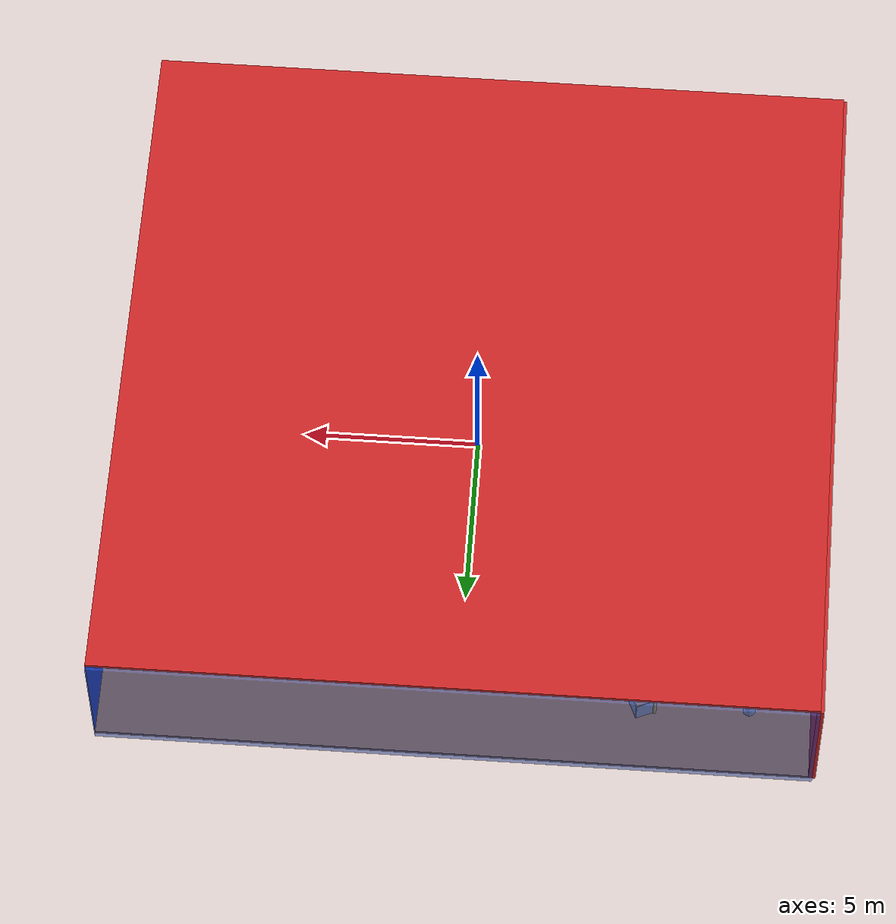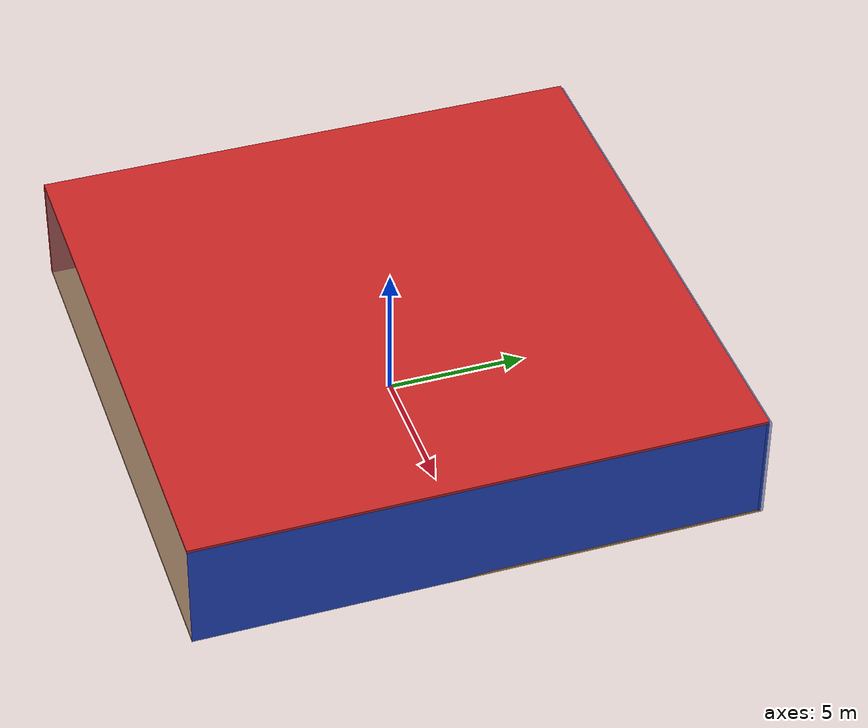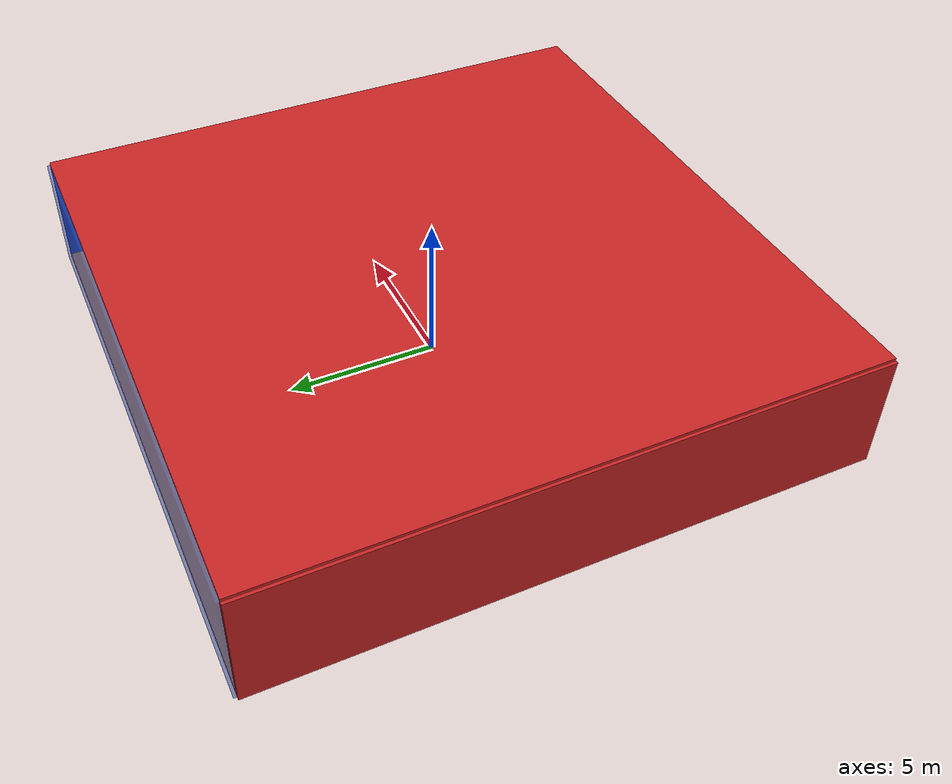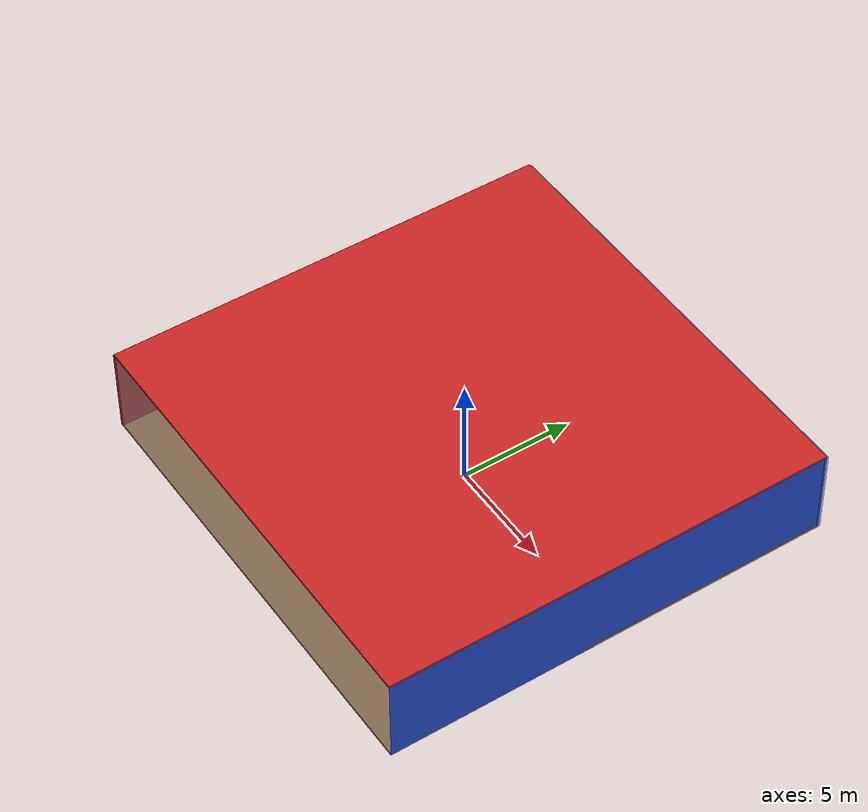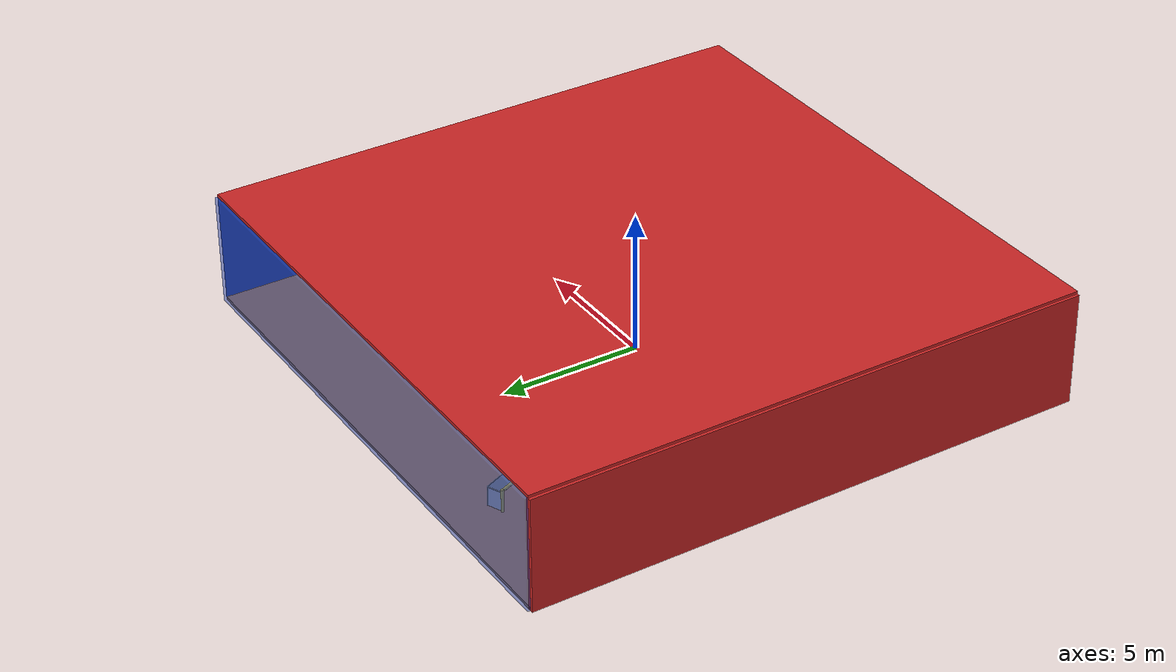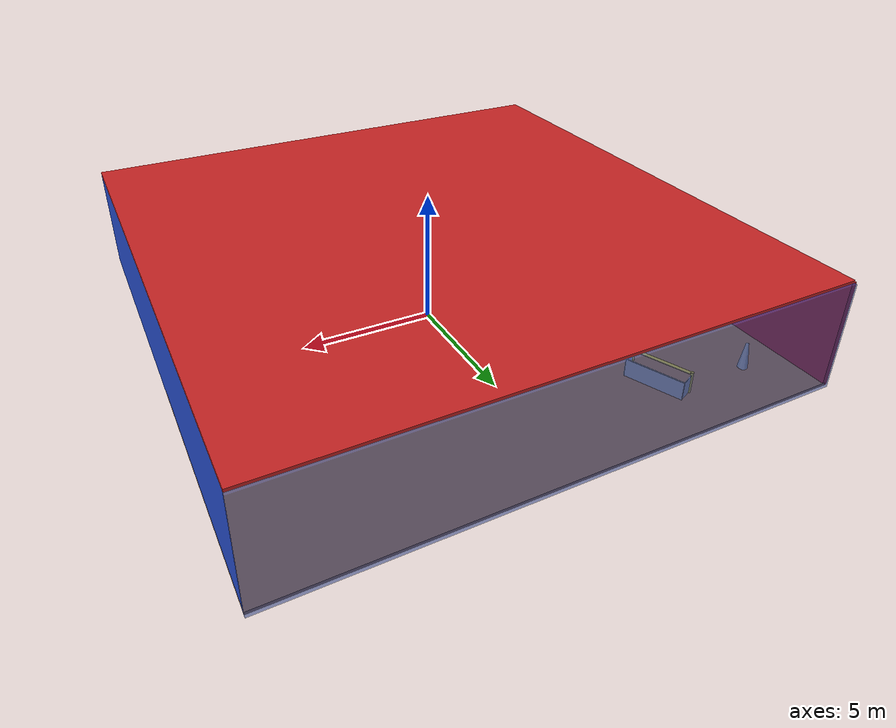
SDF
<sdf version="1.4">
 <world name="default">
  <physics type="ode">
   <max_step_size>0.001</max_step_size>
   <real_time_factor>1</real_time_factor>
   <real_time_update_rate>1000</real_time_update_rate>
   <gravity>0 0 -9.8</gravity>
  </physics>
  <scene><ambient>0.4 0.4 0.4 1</ambient><background>0.7 0.7 0.7 1</background><shadows>1</shadows></scene>
  <model name="Surrounding">
   <static>1</static>
   <link name="Ceiling">
    <collision name="Ceiling_Collision"><geometry><box><size>20 20 0.1</size></box></geometry></collision>
    <visual name="Ceiling_Visual">
     <geometry><box><size>20 20 0.1</size></box></geometry>
     <material>
      <script><uri>file://media/materials/scripts/gazebo.material</uri><name>Gazebo/Red</name></script>
     </material>
    </visual>
    <pose>0 0 4.05 0 0 0</pose>
   </link>
   <link name="Wall_South">
    <collision name="Wall_South_Collision">
     <geometry><box><size>20 0 4</size></box></geometry>
     <pose>0 0 2 0 -0 0</pose>
    </collision>
    <visual name="Wall_South_Visual">
     <pose>0 0 2 0 -0 0</pose>
     <geometry><box><size>20 0 4</size></box></geometry>
     <material>
      <script><uri>file://media/materials/scripts/gazebo.material</uri><name>Gazebo/GreyTransparent</name></script>
     </material>
    </visual>
    <velocity_decay><linear>0</linear><angular>0</angular></velocity_decay>
    <pose>0 -10 0 0 -0 0</pose>
   </link>
   <link name="Wall_East">
    <collision name="Wall_21_Collision">
     <geometry><box><size>20 0 4</size></box></geometry>
     <pose>0 0 2 0 -0 0</pose>
    </collision>
    <visual name="Wall_21_Visual">
     <pose>0 0 2 0 -0 0</pose>
     <geometry><box><size>20 0 4</size></box></geometry>
     <material>
      <script><uri>file://media/materials/scripts/gazebo.material</uri><name>Gazebo/BlueLaser</name></script>
     </material>
    </visual>
    <velocity_decay><linear>0</linear><angular>0</angular></velocity_decay>
    <pose>10 0 0 0 -0 1.5708</pose>
   </link>
   <link name="Wall_North">
    <collision name="Wall_22_Collision">
     <geometry><box><size>20 0.2 4</size></box></geometry>
     <pose>0 0 2 0 -0 0</pose>
    </collision>
    <visual name="Wall_22_Visual">
     <pose>0 0 2 0 -0 0</pose>
     <geometry><box><size>20 0.2 4</size></box></geometry>
     <material>
      <script><uri>file://media/materials/scripts/gazebo.material</uri><name>Gazebo/BlueTransparent</name></script>
     </material>
    </visual>
    <velocity_decay><linear>0</linear><angular>0</angular></velocity_decay>
    <pose>0 10 0 0 -0 0</pose>
   </link>
   <link name="Wall_West">
    <collision name="Wall_23_Collision">
     <geometry><box><size>20 0.2 4</size></box></geometry>
     <pose>0 0 2 0 -0 0</pose>
    </collision>
    <visual name="Wall_23_Visual">
     <pose>0 0 2 0 -0 0</pose>
     <geometry><box><size>20 0.2 4</size></box></geometry>
     <material>
      <script><uri>file://media/materials/scripts/gazebo.material</uri><name>Gazebo/Red</name></script>
     </material>
    </visual>
    <velocity_decay><linear>0</linear><angular>0</angular></velocity_decay>
    <pose>-10 0 0 0 0 -1.5708</pose>
   </link>
   <link name="Ground_link">
    <collision name="collision">
     <pose>0 0 .05 0 -0 0</pose>
     <geometry><box><size>20 20 0.1</size></box></geometry>
    </collision>
    <visual name="visual">
     <pose>0 0 .05 0 -0 0</pose>
     <geometry><box><size>20 20 0.1</size></box></geometry>
     <material>
      <script><uri>file://media/materials/scripts/gazebo.material</uri><name>Gazebo/Wood</name></script>
     </material>
    </visual>
   </link>
   <static>1</static>
  </model>
  <spherical_coordinates>
   <surface_model>EARTH_WGS84</surface_model>
   <latitude_deg>0</latitude_deg>
   <longitude_deg>0</longitude_deg>
   <elevation>0</elevation>
   <heading_deg>0</heading_deg>
  </spherical_coordinates>
  <light name="lightball_0" type="diffuse">
   <diffuse>0.8 0.8 0.8 1</diffuse>
   <specular>0.2 0.2 0.2 1</specular>
   <attenuation>
    <range>100</range>
    <constant>0.7</constant>
    <linear>0.01</linear>
    <quadratic>0.001</quadratic>
   </attenuation>
   <direction>-0.5 0.1 -0.9</direction>
   <pose>-2.19600496182 -6.95820446336 1.56850479298 0 0 0</pose>
  </light>
  <light name="lightball_1" type="diffuse">
   <diffuse>0.8 0.8 0.8 1</diffuse>
   <specular>0.2 0.2 0.2 1</specular>
   <attenuation>
    <range>100</range>
    <constant>0.7</constant>
    <linear>0.01</linear>
    <quadratic>0.001</quadratic>
   </attenuation>
   <direction>-0.5 0.1 -0.9</direction>
   <pose>1.74738110864 5.66914628986 2.55489637172 0 0 0</pose>
  </light>
  <light name="lightball_2" type="diffuse">
   <diffuse>0.8 0.8 0.8 1</diffuse>
   <specular>0.2 0.2 0.2 1</specular>
   <attenuation>
    <range>100</range>
    <constant>0.7</constant>
    <linear>0.01</linear>
    <quadratic>0.001</quadratic>
   </attenuation>
   <direction>-0.5 0.1 -0.9</direction>
   <pose>8.4640775633 3.73162147173 2.48188381264 0 0 0</pose>
  </light>
  <light name="lightball_3" type="diffuse">
   <diffuse>0.8 0.8 0.8 1</diffuse>
   <specular>0.2 0.2 0.2 1</specular>
   <attenuation>
    <range>100</range>
    <constant>0.7</constant>
    <linear>0.01</linear>
    <quadratic>0.001</quadratic>
   </attenuation>
   <direction>-0.5 0.1 -0.9</direction>
   <pose>-4.41907103527 -1.47552721803 0.672175600353 0 0 0</pose>
  </light>
  <light name="lightball_4" type="diffuse">
   <diffuse>0.8 0.8 0.8 1</diffuse>
   <specular>0.2 0.2 0.2 1</specular>
   <attenuation>
    <range>100</range>
    <constant>0.7</constant>
    <linear>0.01</linear>
    <quadratic>0.001</quadratic>
   </attenuation>
   <direction>-0.5 0.1 -0.9</direction>
   <pose>-5.85540316435 4.8980762135 0.751129483933 0 0 0</pose>
  </light>
  <light name="lightball_5" type="diffuse">
   <diffuse>0.8 0.8 0.8 1</diffuse>
   <specular>0.2 0.2 0.2 1</specular>
   <attenuation>
    <range>100</range>
    <constant>0.7</constant>
    <linear>0.01</linear>
    <quadratic>0.001</quadratic>
   </attenuation>
   <direction>-0.5 0.1 -0.9</direction>
   <pose>6.80431213178 4.435185465 1.21151919417 0 0 0</pose>
  </light>
  <light name="lightball_6" type="diffuse">
   <diffuse>0.8 0.8 0.8 1</diffuse>
   <specular>0.2 0.2 0.2 1</specular>
   <attenuation>
    <range>100</range>
    <constant>0.7</constant>
    <linear>0.01</linear>
    <quadratic>0.001</quadratic>
   </attenuation>
   <direction>-0.5 0.1 -0.9</direction>
   <pose>2.14183518446 -1.18189129881 3.16609166006 0 0 0</pose>
  </light>
  <light name="lightball_7" type="diffuse">
   <diffuse>0.8 0.8 0.8 1</diffuse>
   <specular>0.2 0.2 0.2 1</specular>
   <attenuation>
    <range>100</range>
    <constant>0.7</constant>
    <linear>0.01</linear>
    <quadratic>0.001</quadratic>
   </attenuation>
   <direction>-0.5 0.1 -0.9</direction>
   <pose>0.749176460374 6.84122912529 3.18030956879 0 0 0</pose>
  </light>
  <light name="lightball_8" type="diffuse">
   <diffuse>0.8 0.8 0.8 1</diffuse>
   <specular>0.2 0.2 0.2 1</specular>
   <attenuation>
    <range>100</range>
    <constant>0.7</constant>
    <linear>0.01</linear>
    <quadratic>0.001</quadratic>
   </attenuation>
   <direction>-0.5 0.1 -0.9</direction>
   <pose>2.21487246195 4.91077917287 3.48809421409 0 0 0</pose>
  </light>
  <light name="lightball_9" type="diffuse">
   <diffuse>0.8 0.8 0.8 1</diffuse>
   <specular>0.2 0.2 0.2 1</specular>
   <attenuation>
    <range>100</range>
    <constant>0.7</constant>
    <linear>0.01</linear>
    <quadratic>0.001</quadratic>
   </attenuation>
   <direction>-0.5 0.1 -0.9</direction>
   <pose>-8.16712907251 8.55791159118 2.49139307278 0 0 0</pose>
  </light>
  <light name="lightball_10" type="diffuse">
   <diffuse>0.8 0.8 0.8 1</diffuse>
   <specular>0.2 0.2 0.2 1</specular>
   <attenuation>
    <range>100</range>
    <constant>0.7</constant>
    <linear>0.01</linear>
    <quadratic>0.001</quadratic>
   </attenuation>
   <direction>-0.5 0.1 -0.9</direction>
   <pose>0.811475109793 8.37541554084 2.9675341003 0 0 0</pose>
  </light>
  <light name="lightball_11" type="diffuse">
   <diffuse>0.8 0.8 0.8 1</diffuse>
   <specular>0.2 0.2 0.2 1</specular>
   <attenuation>
    <range>100</range>
    <constant>0.7</constant>
    <linear>0.01</linear>
    <quadratic>0.001</quadratic>
   </attenuation>
   <direction>-0.5 0.1 -0.9</direction>
   <pose>2.66715614608 -7.44722427968 2.18183000233 0 0 0</pose>
  </light>
  <light name="lightball_12" type="diffuse">
   <diffuse>0.8 0.8 0.8 1</diffuse>
   <specular>0.2 0.2 0.2 1</specular>
   <attenuation>
    <range>100</range>
    <constant>0.7</constant>
    <linear>0.01</linear>
    <quadratic>0.001</quadratic>
   </attenuation>
   <direction>-0.5 0.1 -0.9</direction>
   <pose>-1.52340248022 -8.2581236311 1.82287979058 0 0 0</pose>
  </light>
  <include>
   <uri>model://construction_cone</uri>
   <pose>-8.17876571548 8.07680873533 0 0 0 0.625944185023</pose>
  </include>
  <include><uri>model://cabinet</uri><pose>-4.03703178676 4.32889297824 0 0 0 0.089793079521</pose></include>
  <include>
   <uri>model://robocup_3Dsim_goal</uri>
   <pose>-5.11797397321 7.34269665619 0 0 0 0.407839943766</pose>
  </include>
  <include>
   <uri>model://construction_cone</uri>
   <pose>1.19059300486 -4.45424839147 0 0 0 2.88333302469</pose>
  </include>
  <include><uri>model://cabinet</uri><pose>1.98894693853 4.26997133596 0 0 0 0.320777410462</pose></include>
  <include>
   <uri>model://construction_cone</uri>
   <pose>3.92421698143 1.07097970914 0 0 0 0.167586787004</pose>
  </include>
  <include><uri>model://table</uri><pose>7.5863952577 -4.16540936878 0 0 0 0.323343037436</pose></include>
  <include>
   <uri>model://robocup_3Dsim_goal</uri>
   <pose>7.62217232977 3.7861281965 0 0 0 2.02191430658</pose>
  </include>
 </world>
</sdf>

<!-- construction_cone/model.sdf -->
<sdf version="1.5">
  <model name="Construction Cone">
    <link name="link">
      <collision name="collision">
        <geometry>
          <mesh>
            <scale>10 10 10</scale>
            <uri>file://isr-testbed/construction_cone/meshes/construction_cone.dae</uri>
          </mesh>
        </geometry>
      </collision>
      <visual name="visual">
        <geometry>
          <mesh>
            <scale>10 10 10</scale>
            <uri>file://isr-testbed/construction_cone/meshes/construction_cone.dae</uri>
          </mesh>
        </geometry>
      </visual>
    </link>
  </model>
</sdf>

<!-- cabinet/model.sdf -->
<sdf version="1.5">
  <model name="cabinet">
    <static>true</static>
    <link name="cabinet_bottom_plate">
      <inertial>
        <pose>0 0 -1 0 0 0</pose>
        <inertia>
          <ixx>2.050000</ixx>
          <ixy>0</ixy>
          <ixz>0</ixz>
          <iyy>2.050000</iyy>
          <iyz>0</iyz>
          <izz>2.050000</izz>
        </inertia>
        <mass>25.000000</mass>
      </inertial>
      <collision name="cabinet_bottom_plate_geom">
        <pose>0 0 0.010000 0 0 0</pose>
        <geometry>
          <box>
            <size>0.450000 0.450000 0.020000</size>
          </box>
        </geometry>
      </collision>
      <visual name="cabinet_bottom_plate_geom_visual">
        <pose>0 0 0.010000 0 0 0</pose>
        <geometry>
          <box>
            <size>0.450000 0.450000 0.020000</size>
          </box>
        </geometry>
        <material>
          <script>
            <uri>model://media/materials/scripts/gazebo.material</uri>
            <name>Gazebo/Wood</name>
          </script>
        </material>
      </visual>
      <collision name="cabinet_bottom_plate_geom_cabinet_back_plate">
        <pose>0.235000 0 0.510000 0 0 0</pose>
        <geometry>
          <box>
            <size>0.020000 0.450000 1.020000</size>
          </box>
        </geometry>
      </collision>
      <visual name="cabinet_bottom_plate_geom_cabinet_back_plate_visual">
        <pose>0.235000 0 0.510000 0 0 0</pose>
        <geometry>
          <box>
            <size>0.020000 0.450000 1.020000</size>
          </box>
        </geometry>
        <material>
          <script>
            <uri>model://media/materials/scripts/gazebo.material</uri>
            <name>Gazebo/Wood</name>
          </script>
        </material>
      </visual>
      <collision name="cabinet_bottom_plate_geom_cabinet_left_plate">
        <pose>0 0.235000 0.510000 0 0 0</pose>
        <geometry>
          <box>
            <size>0.450000 0.020000 1.020000</size>
          </box>
        </geometry>
      </collision>
      <visual name="cabinet_bottom_plate_geom_cabinet_left_plate_visual">
        <pose>0 0.235000 0.510000 0 0 0</pose>
        <geometry>
          <box>
            <size>0.450000 0.020000 1.020000</size>
          </box>
        </geometry>
        <material>
          <script>
            <uri>model://media/materials/scripts/gazebo.material</uri>
            <name>Gazebo/Wood</name>
          </script>
        </material>
      </visual>
      <collision name="cabinet_bottom_plate_geom_cabinet_middle_plate">
        <pose>0 0 0.510000 0 0 0</pose>
        <geometry>
          <box>
            <size>0.450000 0.450000 0.020000</size>
          </box>
        </geometry>
      </collision>
      <visual name="cabinet_bottom_plate_geom_cabinet_middle_plate_visual">
        <pose>0 0 0.510000 0 0 0</pose>
        <geometry>
          <box>
            <size>0.450000 0.450000 0.020000</size>
          </box>
        </geometry>
        <material>
          <script>
            <uri>model://media/materials/scripts/gazebo.material</uri>
            <name>Gazebo/Wood</name>
          </script>
        </material>
      </visual>
      <collision name="cabinet_bottom_plate_geom_cabinet_right_plate">
        <pose>0 -0.235000 0.510000 0 0 0</pose>
        <geometry>
          <box>
            <size>0.450000 0.020000 1.020000</size>
          </box>
        </geometry>
      </collision>
      <visual name="cabinet_bottom_plate_geom_cabinet_right_plate_visual">
        <pose>0 -0.235000 0.510000 0 0 0</pose>
        <geometry>
          <box>
            <size>0.450000 0.020000 1.020000</size>
          </box>
        </geometry>
        <material>
          <script>
            <uri>model://media/materials/scripts/gazebo.material</uri>
            <name>Gazebo/Wood</name>
          </script>
        </material>
      </visual>
      <collision name="cabinet_bottom_plate_geom_cabinet_top_plate">
        <pose>0 0 1.010000 0 0 0</pose>
        <geometry>
          <box>
            <size>0.450000 0.450000 0.020000</size>
          </box>
        </geometry>
      </collision>
      <visual name="cabinet_bottom_plate_geom_cabinet_top_plate_visual">
        <pose>0 0 1.010000 0 0 0</pose>
        <geometry>
          <box>
            <size>0.450000 0.450000 0.020000</size>
          </box>
        </geometry>
        <material>
          <script>
            <uri>model://media/materials/scripts/gazebo.material</uri>
            <name>Gazebo/Wood</name>
          </script>
        </material>
      </visual>
    </link>
  </model>
</sdf>

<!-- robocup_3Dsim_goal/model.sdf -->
<sdf version="1.5">
  <model name="robocup_3d_goal">
    <static>true</static>
    <link name="left_post">
      <pose>0 1.05 0.45 0 0 0</pose>
      <collision name="collision">
        <geometry>
          <cylinder>
            <radius>0.05</radius>
            <length>0.9</length>
          </cylinder>
        </geometry>
      </collision>
      <visual name="visual">
        <geometry>
          <cylinder>
            <radius>0.05</radius>
            <length>0.9</length>
          </cylinder>
        </geometry>
        <material>
          <script>
            <uri>file://media/materials/scripts/gazebo.material</uri>
            <name>Gazebo/ZincYellow</name>
          </script>
        </material>
      </visual>
    </link>
    <link name="left_support_horiz_lower">
      <pose>0.30 1.05 0.01 0 0 0</pose>
      <collision name="collision">
        <geometry>
          <box>
            <size>0.50 0.02 0.02</size>
          </box>
        </geometry>
      </collision>
      <visual name="visual">
        <geometry>
          <box>
            <size>0.50 0.02 0.02</size>
          </box>
        </geometry>
        <material>
          <script>
            <uri>file://media/materials/scripts/gazebo.material</uri>
            <name>Gazebo/White</name>
          </script>
        </material>
      </visual>
    </link>
    <link name="left_support_horiz_upper">
      <pose>0.30 1.05 0.79 0 0 0</pose>
      <collision name="collision">
        <geometry>
          <box>
            <size>0.50 0.02 0.02</size>
          </box>
        </geometry>
      </collision>
      <visual name="visual">
        <geometry>
          <box>
            <size>0.50 0.02 0.02</size>
          </box>
        </geometry>
        <material>
          <script>
            <uri>file://media/materials/scripts/gazebo.material</uri>
            <name>Gazebo/White</name>
          </script>
        </material>
      </visual>
    </link>
    <link name="left_support_vertical">
      <pose>0.56 1.05 0.4 0 1.5708 0</pose>
      <collision name="collision">
        <geometry>
          <box>
            <size>0.80 0.02 0.02</size>
          </box>
        </geometry>
      </collision>
      <visual name="visual">
        <geometry>
          <box>
            <size>0.80 0.02 0.02</size>
          </box>
        </geometry>
        <material>
          <script>
            <uri>file://media/materials/scripts/gazebo.material</uri>
            <name>Gazebo/White</name>
          </script>
        </material>
      </visual>
    </link>
    <link name="right_support_horiz_lower">
      <pose>0.30 -1.05 0.01 0 0 0</pose>
      <collision name="collision">
        <geometry>
          <box>
            <size>0.50 0.02 0.02</size>
          </box>
        </geometry>
      </collision>
      <visual name="visual">
        <geometry>
          <box>
            <size>0.50 0.02 0.02</size>
          </box>
        </geometry>
        <material>
          <script>
            <uri>file://media/materials/scripts/gazebo.material</uri>
            <name>Gazebo/White</name>
          </script>
        </material>
      </visual>
    </link>
    <link name="right_support_horiz_upper">
      <pose>0.30 -1.05 0.79 0 0 0</pose>
      <collision name="collision">
        <geometry>
          <box>
            <size>0.50 0.02 0.02</size>
          </box>
        </geometry>
      </collision>
      <visual name="visual">
        <geometry>
          <box>
            <size>0.50 0.02 0.02</size>
          </box>
        </geometry>
        <material>
          <script>
            <uri>file://media/materials/scripts/gazebo.material</uri>
            <name>Gazebo/White</name>
          </script>
        </material>
      </visual>
    </link>
    <link name="right_support_vertical">
      <pose>0.56 -1.05 0.4 0 1.5708 0</pose>
      <collision name="collision">
        <geometry>
          <box>
            <size>0.80 0.02 0.02</size>
          </box>
        </geometry>
      </collision>
      <visual name="visual">
        <geometry>
          <box>
            <size>0.80 0.02 0.02</size>
          </box>
        </geometry>
        <material>
          <script>
            <uri>file://media/materials/scripts/gazebo.material</uri>
            <name>Gazebo/White</name>
          </script>
        </material>
      </visual>
    </link>
    <link name="center_support_horiz_lower">
      <pose>0.56 0 0.01 0 1.5708 0</pose>
      <collision name="collision">
        <geometry>
          <box>
            <size>0.02 2.08 0.02</size>
          </box>
        </geometry>
      </collision>
      <visual name="visual">
        <geometry>
          <box>
            <size>0.02 2.08 0.02</size>
          </box>
        </geometry>
        <material>
          <script>
            <uri>file://media/materials/scripts/gazebo.material</uri>
            <name>Gazebo/White</name>
          </script>
        </material>
      </visual>
    </link>
    <link name="center_support_horiz_upper">
      <pose>0.56 0 0.79 0 1.5708 0</pose>
      <collision name="collision">
        <geometry>
          <box>
            <size>0.02 2.08 0.02</size>
          </box>
        </geometry>
      </collision>
      <visual name="visual">
        <geometry>
          <box>
            <size>0.02 2.08 0.02</size>
          </box>
        </geometry>
        <material>
          <script>
            <uri>file://media/materials/scripts/gazebo.material</uri>
            <name>Gazebo/White</name>
          </script>
        </material>
      </visual>
    </link>
    <link name="right_post">
      <pose>0 -1.05 0.45 0 0 0</pose>
      <collision name="collision">
        <geometry>
          <cylinder>
            <radius>0.05</radius>
            <length>0.9</length>
          </cylinder>
        </geometry>
      </collision>
      <visual name="visual">
        <geometry>
          <cylinder>
            <radius>0.05</radius>
            <length>0.9</length>
          </cylinder>
        </geometry>
        <material>
          <script>
            <uri>file://media/materials/scripts/gazebo.material</uri>
            <name>Gazebo/ZincYellow</name>
          </script>
        </material>
      </visual>
    </link>
    <link name="crossbar">
      <pose>0 0 0.85 1.57 1.57 0</pose>
      <collision name="collision">
        <geometry>
          <cylinder>
            <radius>0.05</radius>
            <length>2.0</length>
          </cylinder>
        </geometry>
      </collision>
      <visual name="visual">
        <geometry>
          <cylinder>
            <radius>0.05</radius>
            <length>2.0</length>
          </cylinder>
        </geometry>
        <material>
          <script>
            <uri>file://media/materials/scripts/gazebo.material</uri>
            <name>Gazebo/ZincYellow</name>
          </script>
        </material>
      </visual>
    </link>
    <link name="center_net">
      <pose>0.56 0 0.40 0 0 0</pose>
      <collision name="collision">
        <geometry>
          <box>
            <size>0.01 2.1 0.80</size>
          </box>
        </geometry>
      </collision>
      <visual name="visual">
        <geometry>
          <box>
            <size>0.01 2.1 0.80</size>
          </box>
        </geometry>
        <material>
          <script>
            <uri>model://../model_source/models/robocup09_spl_field/materials/scripts/</uri>
            <uri>model://../model_source/models/robocup09_spl_field/materials/textures/</uri>
            <name>RoboCup/Net</name>
          </script>
        </material>
      </visual>
    </link>
    <link name="left_net">
      <pose>0.30 1.05 0.40 0 0 0</pose>
      <collision name="collision">
        <geometry>
          <box>
            <size>0.50 0.01 0.76</size>
          </box>
        </geometry>
      </collision>
      <visual name="visual">
        <geometry>
          <box>
            <size>0.50 0.01 0.76</size>
          </box>
        </geometry>
        <material>
          <script>
            <uri>model://../model_source/models/robocup09_spl_field/materials/scripts/</uri>
            <uri>model://../model_source/models/robocup09_spl_field/materials/textures/</uri>
            <name>RoboCup/Net</name>
          </script>
        </material>
      </visual>
    </link>
    <link name="right_net">
      <pose>0.30 -1.05 0.40 0 0 0</pose>
      <collision name="collision">
        <geometry>
          <box>
            <size>0.50 0.01 0.76</size>
          </box>
        </geometry>
      </collision>
      <visual name="visual">
        <geometry>
          <box>
            <size>0.50 0.01 0.76</size>
          </box>
        </geometry>
        <material>
          <script>
            <uri>model://../model_source/models/robocup09_spl_field/materials/scripts/</uri>
            <uri>model://../model_source/models/robocup09_spl_field/materials/textures/</uri>
            <name>RoboCup/Net</name>
          </script>
        </material>
      </visual>
    </link>
  </model>
</sdf>

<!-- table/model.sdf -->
<sdf version="1.5">
  <model name="table">
    <static>true</static>
    <link name="link">
      <collision name="surface">
        <pose>0 0 1.0 0 0 0</pose>
        <geometry>
          <box>
            <size>1.5 0.8 0.03</size>
          </box>
        </geometry>
        <surface>
          <friction>
            <ode>
              <mu>0.6</mu>
              <mu2>0.6</mu2>
            </ode>
          </friction>
        </surface>
      </collision>
      <visual name="visual1">
        <pose>0 0 1.0 0 0 0</pose>
        <geometry>
          <box>
            <size>1.5 0.8 0.03</size>
          </box>
        </geometry>
        <material>
          <script>
            <uri>model://media/materials/scripts/gazebo.material</uri>
            <name>Gazebo/Wood</name>
          </script>
        </material>
      </visual>
      <collision name="front_left_leg">
        <pose>0.68 0.38 0.5 0 0 0</pose>
        <geometry>
          <cylinder>
            <radius>0.02</radius>
            <length>1.0</length>
          </cylinder>
        </geometry>
      </collision>
      <visual name="front_left_leg">
        <pose>0.68 0.38 0.5 0 0 0</pose>
        <geometry>
          <cylinder>
            <radius>0.02</radius>
            <length>1.0</length>
          </cylinder>
        </geometry>
        <material>
          <script>
            <uri>model://media/materials/scripts/gazebo.material</uri>
            <name>Gazebo/Grey</name>
          </script>
        </material>
      </visual>
      <collision name="front_right_leg">
        <pose>0.68 -0.38 0.5 0 0 0</pose>
        <geometry>
          <cylinder>
            <radius>0.02</radius>
            <length>1.0</length>
          </cylinder>
        </geometry>
      </collision>
      <visual name="front_right_leg">
        <pose>0.68 -0.38 0.5 0 0 0</pose>
        <geometry>
          <cylinder>
            <radius>0.02</radius>
            <length>1.0</length>
          </cylinder>
        </geometry>
        <material>
          <script>
            <uri>model://media/materials/scripts/gazebo.material</uri>
            <name>Gazebo/Grey</name>
          </script>
        </material>
      </visual>
      <collision name="back_right_leg">
        <pose>-0.68 -0.38 0.5 0 0 0</pose>
        <geometry>
          <cylinder>
            <radius>0.02</radius>
            <length>1.0</length>
          </cylinder>
        </geometry>
      </collision>
      <visual name="back_right_leg">
        <pose>-0.68 -0.38 0.5 0 0 0</pose>
        <geometry>
          <cylinder>
            <radius>0.02</radius>
            <length>1.0</length>
          </cylinder>
        </geometry>
        <material>
          <script>
            <uri>model://media/materials/scripts/gazebo.material</uri>
            <name>Gazebo/Grey</name>
          </script>
        </material>
      </visual>
      <collision name="back_left_leg">
        <pose>-0.68 0.38 0.5 0 0 0</pose>
        <geometry>
          <cylinder>
            <radius>0.02</radius>
            <length>1.0</length>
          </cylinder>
        </geometry>
      </collision>
      <visual name="back_left_leg">
        <pose>-0.68 0.38 0.5 0 0 0</pose>
        <geometry>
          <cylinder>
            <radius>0.02</radius>
            <length>1.0</length>
          </cylinder>
        </geometry>
        <material>
          <script>
            <uri>model://media/materials/scripts/gazebo.material</uri>
            <name>Gazebo/Grey</name>
          </script>
        </material>
      </visual>
    </link>
  </model>
</sdf>
